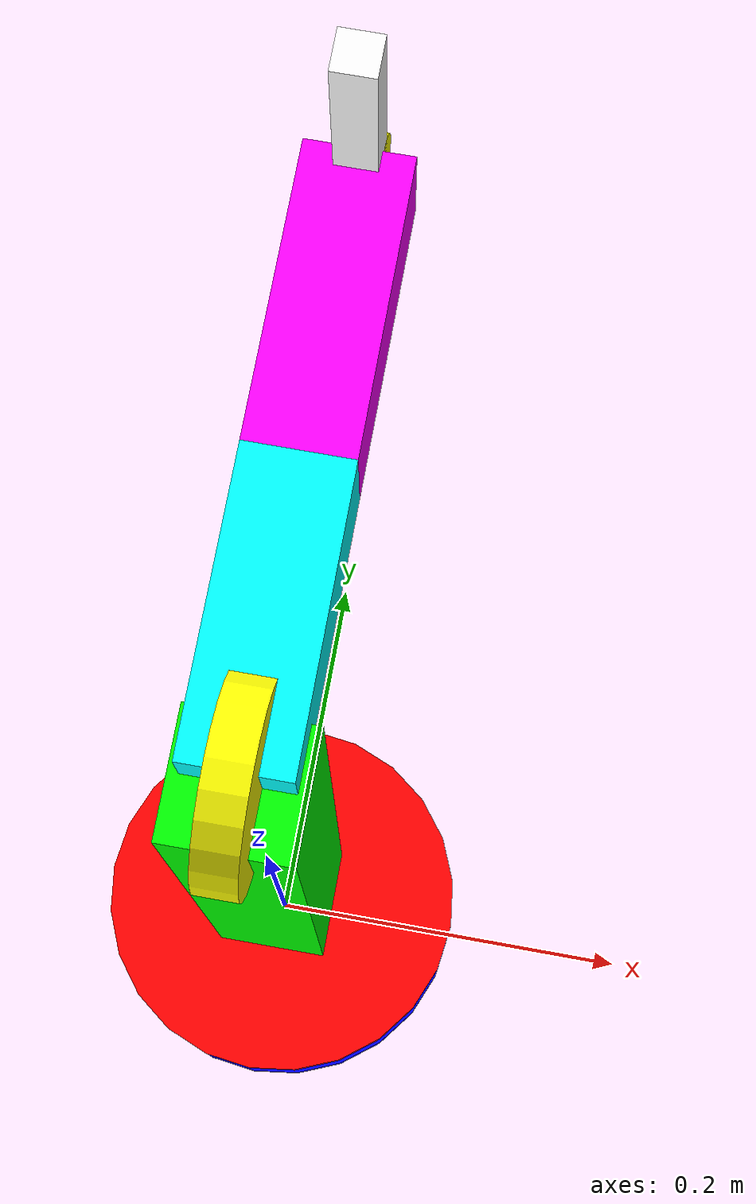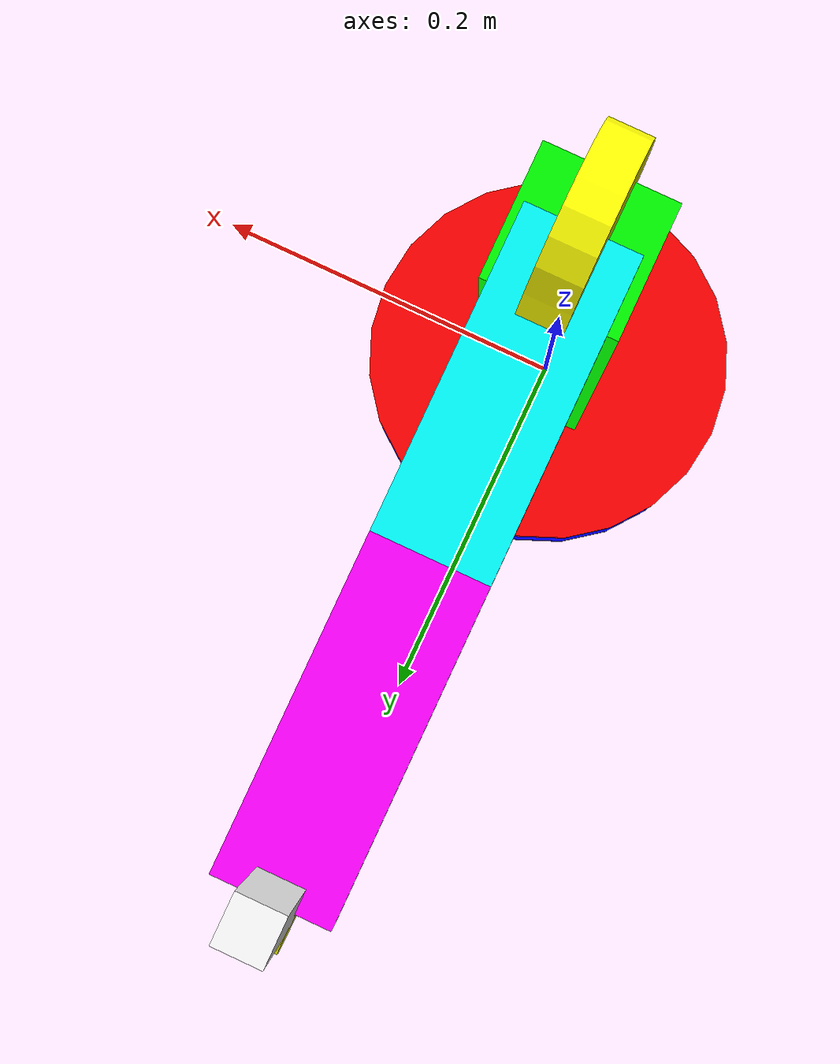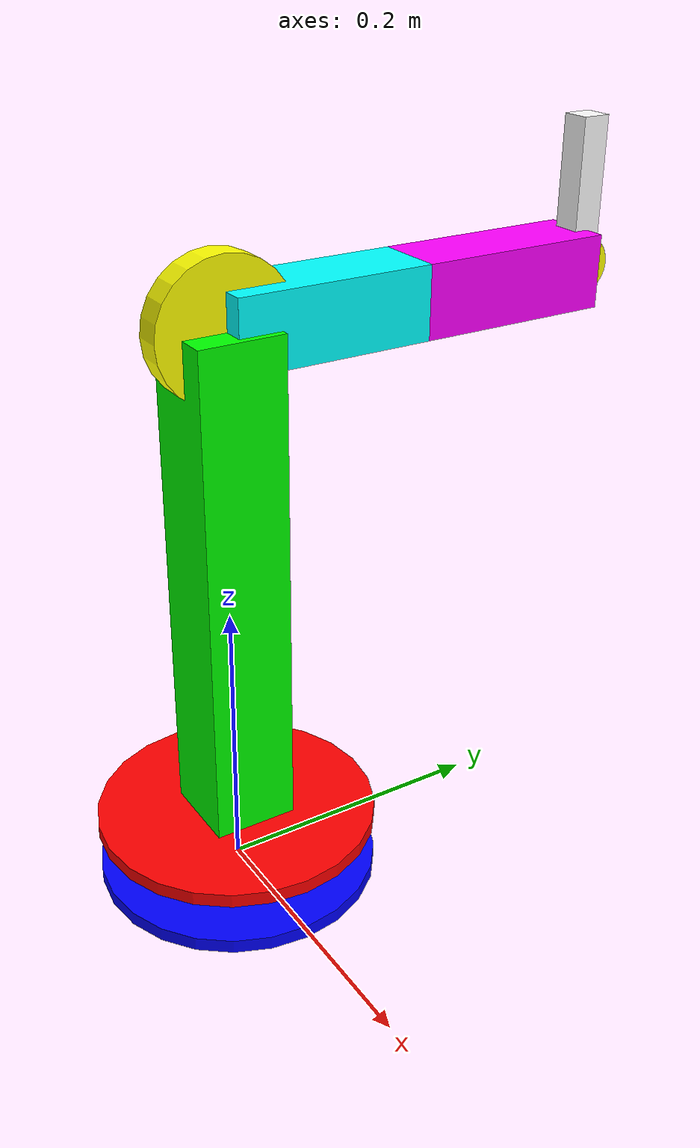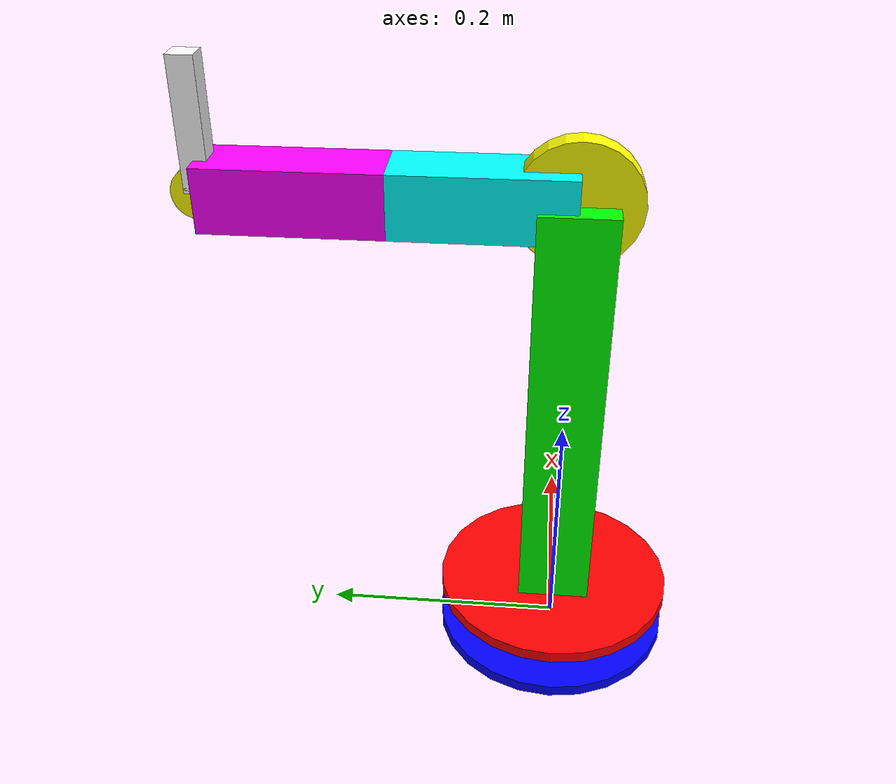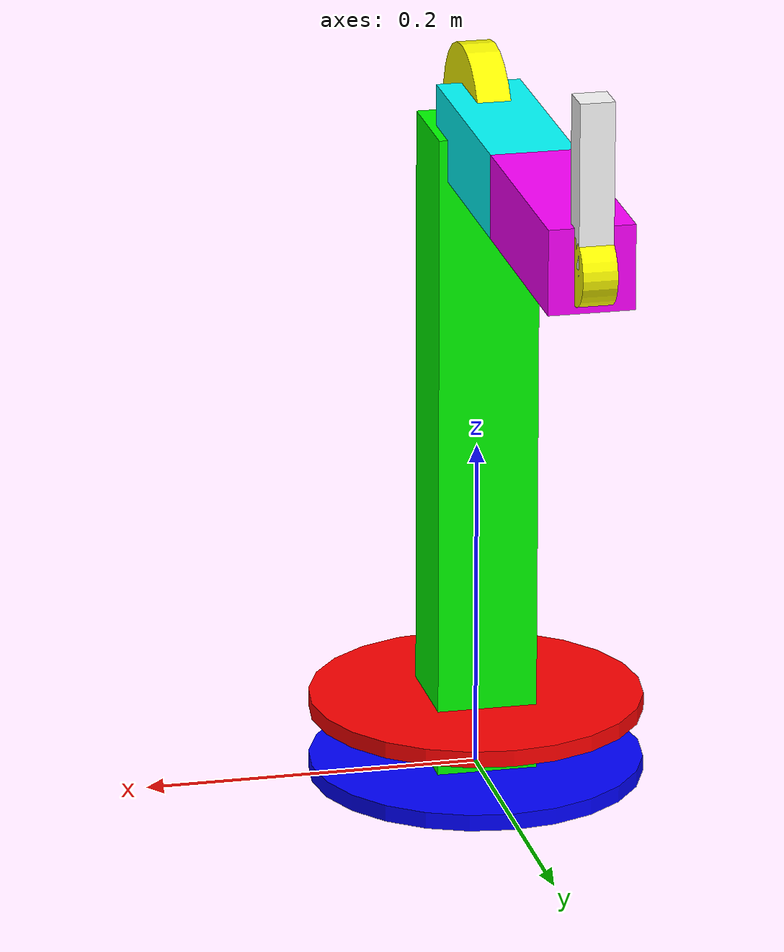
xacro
<?xml version="1.0"?>
<robot name="chess_robot" xmlns:xacro="http://www.ros.org/wiki/xacro">
  <xacro:arg name="prefix" default="" />
  <xacro:arg name="config_type" default="chess_robot" />
  <xacro:arg name="ros2_control_type" default="chess_robot" />
  <xacro:arg name="port_name" default="/dev/ttyUSB0" />

  <xacro:include filename="$(find dynamixel_control)/urdf/chess_robot.urdf.xacro" />

  <link name="world"/>

  <joint name="$(arg prefix)world_fixed" type="fixed">
    <parent link="world"/>
    <child link="$(arg prefix)base_link1"/>
    <origin xyz="0.0 0.0 0.0" rpy="0 0 0"/>
  </joint>

  <!-- 2-DOF에는 end_effector 고정조인트가 필요 없으면 제거 가능.
       샘플 구조를 유지하기 위해 남겨두되, link2에 고정한다고 가정 -->

  <xacro:chess_robot prefix="$(arg prefix)" />

</robot>

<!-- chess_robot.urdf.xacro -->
<robot xmlns:xacro="http://www.ros.org/wiki/xacro">
    <xacro:macro name="chess_robot" params="prefix">
        <!-- link1 (base) -->
        <link name="${prefix}base_link1">
            <visual>
                <geometry>
                    <cylinder length="0.01" radius="0.1"/>
                </geometry>
                <material name="blue">
                    <color rgba="0 0 1 1"/>
                </material>
            </visual>
        </link>

        <!-- joint1 -->
        <joint name="motor_joint" type="revolute">
            <parent link="${prefix}base_link1"/>
            <child link="${prefix}base_link2"/>
            <origin xyz="0 0 0" rpy="0 0 0"/>
            <axis xyz="0 0 1"/>
            <limit effort="1.0" velocity="1.0" lower="${-pi}" upper="${pi}"/>
        </joint>

        <!-- link2 (base) -->
        <link name="${prefix}base_link2">
            <visual>
                <origin xyz="0 0 0.04" rpy="0 0 0"/>
                <geometry>
                    <cylinder length="0.01" radius="0.1"/>
                </geometry>
                <material name="red">
                    <color rgba="1 0 0 1"/>
                </material>
            </visual>
            <visual>
                <origin xyz="0 0 0.2" rpy="0 0 0"/>
                <geometry>
                    <box size="0.06 0.06 0.4"/>
                </geometry>
                <material name="green">
                    <color rgba="0 1 0 1"/>
                </material>
            </visual>
        </link>

        <!-- joint2 -->
        <joint name="shoulder_revolute_joint" type="revolute">
            <parent link="${prefix}base_link2"/>
            <child link="${prefix}gear1"/>
            <origin xyz="0 0 0.4" rpy="0 0 0"/>
            <axis xyz="1 0 0"/>
            <limit effort="1.0" velocity="1.0" lower="${-pi}" upper="${pi}"/>
        </joint>
        <joint name="shoulder_slide_joint" type="prismatic">
            <parent link="${prefix}base_link2"/>
            <child link="${prefix}arm_link1"/>
            <origin xyz="0 0 0.4" rpy="0 0 0"/>
            <axis xyz="0 0 1"/>
            <limit effort="1.0" velocity="1.0" lower="${-pi/2}" upper="${pi/2}"/>

            <mimic joint="shoulder_revolute_joint" multiplier="0.048" offset="0"/>
        </joint>

        <!-- gear1 48mm-->
        <link name="${prefix}gear1">
            <visual>
                <origin xyz="0 0 0" rpy="0 ${pi/2} 0"/>
                <geometry>
                    <cylinder length="0.02" radius="0.048"/>
                </geometry>
                <material name="yellow">
                    <color rgba="1 1 0 1"/>
                </material>
            </visual>
        </link>
        <!-- link3 (arm_link1)138mm -->
        <link name="${prefix}arm_link1">
            <visual>
                <origin xyz="0 0.069 0" rpy="0 0 0"/>
                <geometry>
                    <box size="0.05 0.138 0.05"/>
                </geometry>
                <material name="cyan">
                    <color rgba="0 1 1 1"/>
                </material>
            </visual>
        </link>

        <!-- joint3 -->
        <joint name="arm_joint" type="revolute">
            <parent link="${prefix}arm_link1"/>
            <child link="${prefix}arm_link2"/>
            <origin xyz="0 0.138 0" rpy="0 0 0"/>
            <axis xyz="0 0 1"/>
            <limit effort="1.0" velocity="1.0" lower="${-pi}" upper="${pi}"/>
        </joint>

        <!-- link4 (arm_link2) 140mm-->
        <link name="${prefix}arm_link2">
            <visual>
                <origin xyz="0 0.07 0" rpy="0 0 0"/>
                <geometry>
                    <box size="0.05 0.140 0.05"/>
                </geometry>
                <material name="magenta">
                    <color rgba="1 0 1 1"/>
                </material>
            </visual>
        </link>

        <!-- joint4 -->
        <joint name="hand_revolute_joint" type="revolute">
            <parent link="${prefix}arm_link2"/>
            <child link="${prefix}gear2"/>
            <origin xyz="0 0.14 0" rpy="0 0 0"/>
            <axis xyz="1 0 0"/>
            <limit effort="1.0" velocity="1.0" lower="${-pi}" upper="${pi}"/>
        </joint>
        <joint name="hand_slide_joint" type="prismatic">
            <parent link="${prefix}arm_link2"/>
            <child link="${prefix}hand_link1"/>
            <origin xyz="0 0.14 0" rpy="0 0 0"/>
            <axis xyz="0 0 1"/>
            <limit effort="1.0" velocity="1.0" lower="${-pi/2}" upper="${pi/2}"/>

            <mimic joint="hand_revolute_joint" multiplier="0.02" offset="0"/>
        </joint>

        <!-- gear2-->
        <link name="${prefix}gear2">
            <visual>
                <origin xyz="0 0 0" rpy="0 ${pi/2} 0"/>
                <geometry>
                    <cylinder length="0.02" radius="0.02"/>
                </geometry>
                <material name="yellow">
                    <color rgba="1 1 0 1"/>
                </material>
            </visual>
        </link>
        <!-- link5 (hand_link1) -->
        <link name="${prefix}hand_link1">
            <visual>
                <origin xyz="0 0 0.05" rpy="0 0 0"/>
                <geometry>
                    <box size="0.02 0.02 0.1"/>
                </geometry>
                <material name="white">
                    <color rgba="1 1 1 1"/>
                </material>
            </visual>
        </link>

    </xacro:macro>
</robot>
